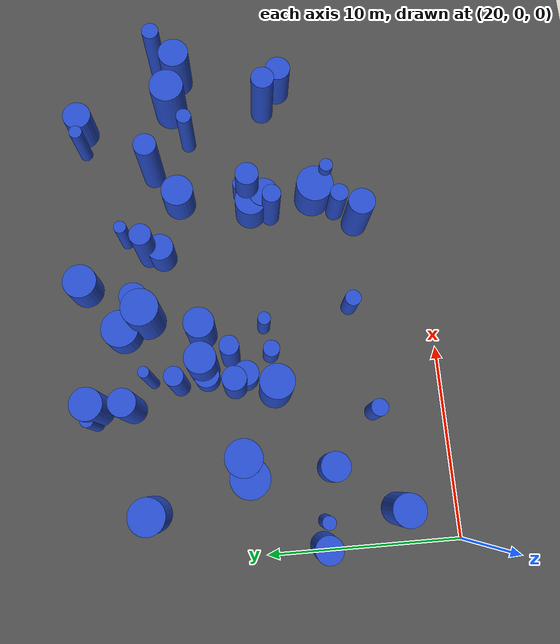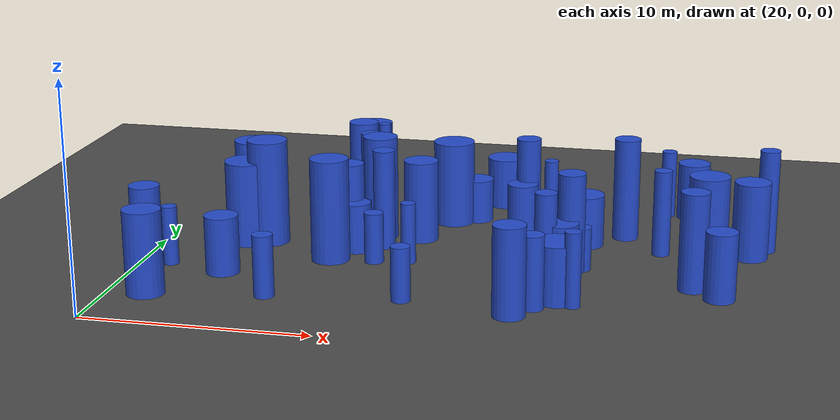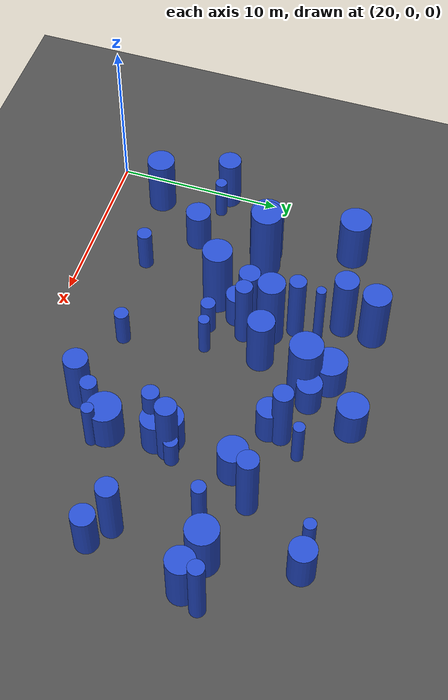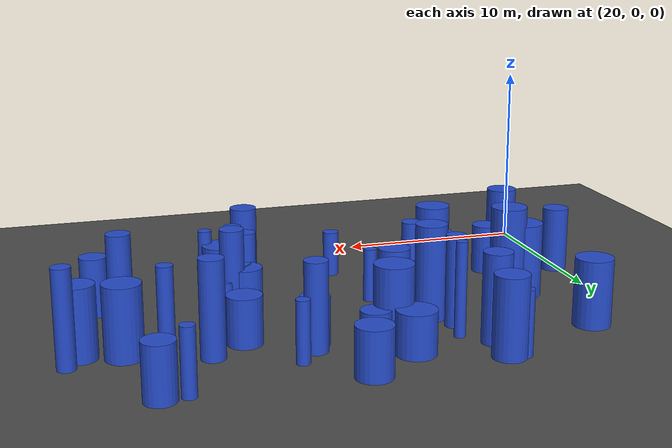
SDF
<sdf version="1.6">
 <world name="default">
  <model name="ground_plane">
   <static>1</static>
   <link name="link">
    <collision name="collision">
     <geometry><plane><normal>0 0 1</normal><size>100 100</size></plane></geometry>
     <surface><friction><ode><mu>100</mu><mu2>50</mu2></ode></friction></surface>
    </collision>
    <visual name="visual">
     <cast_shadows>0</cast_shadows>
     <geometry><plane><normal>0 0 1</normal><size>100 100</size></plane></geometry>
     <material>
      <script><uri>file://media/materials/scripts/gazebo.material</uri><name>Gazebo/Grey</name></script>
     </material>
    </visual>
   </link>
  </model>
  <model name="asphalt_plane">
   <static>1</static>
   <link name="link">
    <collision name="collision"><geometry><box><size>200 200 0.1</size></box></geometry></collision>
    <visual name="visual">
     <cast_shadows>0</cast_shadows>
     <geometry><box><size>200 200 0.1</size></box></geometry>
     <material>
      <script>
       <uri>model://asphalt_plane/materials/scripts</uri>
       <uri>model://asphalt_plane/materials/textures</uri>
       <name>vrc/asphalt</name>
      </script>
     </material>
    </visual>
   </link>
  </model>
  <model name="9">
   <static>0</static>
   <link name="link">
    <inertial>
     <mass>2</mass>
     <inertia><ixx>1.27297</ixx><ixy>0</ixy><ixz>0</ixz><iyy>1.27297</iyy><iyz>0</iyz><izz>0.516849</izz></inertia>
    </inertial>
    <collision name="collision">
     <geometry><cylinder><length>2.46725</length><radius>0.718922</radius></cylinder></geometry>
     <surface><contact><collide_without_contact>1</collide_without_contact></contact></surface>
    </collision>
    <visual name="visual">
     <geometry><cylinder><length>2.46725</length><radius>0.718922</radius></cylinder></geometry>
     <material>
      <script><uri>file://media/materials/scripts/gazebo.material</uri><name>Gazebo/Blue</name></script>
     </material>
    </visual>
    <gravity>0</gravity>
   </link>
   <pose>36.1886 14.3863 1.23362 0 -0 0</pose>
  </model>
  <model name="10">
   <static>0</static>
   <link name="link">
    <inertial>
     <mass>2</mass>
     <inertia><ixx>1.40992</ixx><ixy>0</ixy><ixz>0</ixz><iyy>1.40992</iyy><iyz>0</iyz><izz>0.197939</izz></inertia>
    </inertial>
    <collision name="collision">
     <geometry><cylinder><length>2.80459</length><radius>0.444903</radius></cylinder></geometry>
     <surface><contact><collide_without_contact>1</collide_without_contact></contact></surface>
    </collision>
    <visual name="visual">
     <geometry><cylinder><length>2.80459</length><radius>0.444903</radius></cylinder></geometry>
     <material>
      <script><uri>file://media/materials/scripts/gazebo.material</uri><name>Gazebo/Blue</name></script>
     </material>
    </visual>
    <gravity>0</gravity>
   </link>
   <pose>26.8185 3.79167 1.40229 0 -0 0</pose>
  </model>
  <model name="14">
   <static>0</static>
   <link name="link">
    <inertial>
     <mass>2</mass>
     <inertia><ixx>2.91047</ixx><ixy>0</ixy><ixz>0</ixz><iyy>2.91047</iyy><iyz>0</iyz><izz>0.499162</izz></inertia>
    </inertial>
    <collision name="collision">
     <geometry><cylinder><length>3.99567</length><radius>0.706514</radius></cylinder></geometry>
     <surface><contact><collide_without_contact>1</collide_without_contact></contact></surface>
    </collision>
    <visual name="visual">
     <geometry><cylinder><length>3.99567</length><radius>0.706514</radius></cylinder></geometry>
     <material>
      <script><uri>file://media/materials/scripts/gazebo.material</uri><name>Gazebo/Blue</name></script>
     </material>
    </visual>
    <gravity>0</gravity>
   </link>
   <pose>37.3368 3.64907 1.99783 0 -0 0</pose>
  </model>
  <model name="22">
   <static>0</static>
   <link name="link">
    <inertial>
     <mass>2</mass>
     <inertia><ixx>1.57924</ixx><ixy>0</ixy><ixz>0</ixz><iyy>1.57924</iyy><iyz>0</iyz><izz>0.59029</izz></inertia>
    </inertial>
    <collision name="collision">
     <geometry><cylinder><length>2.77571</length><radius>0.768303</radius></cylinder></geometry>
     <surface><contact><collide_without_contact>1</collide_without_contact></contact></surface>
    </collision>
    <visual name="visual">
     <geometry><cylinder><length>2.77571</length><radius>0.768303</radius></cylinder></geometry>
     <material>
      <script><uri>file://media/materials/scripts/gazebo.material</uri><name>Gazebo/Blue</name></script>
     </material>
    </visual>
    <gravity>0</gravity>
   </link>
   <pose>43.9591 18.4852 1.38785 0 -0 0</pose>
  </model>
  <model name="24">
   <static>0</static>
   <link name="link">
    <inertial>
     <mass>2</mass>
     <inertia><ixx>1.8584</ixx><ixy>0</ixy><ixz>0</ixz><iyy>1.8584</iyy><iyz>0</iyz><izz>0.121468</izz></inertia>
    </inertial>
    <collision name="collision">
     <geometry><cylinder><length>3.2842</length><radius>0.348523</radius></cylinder></geometry>
     <surface><contact><collide_without_contact>1</collide_without_contact></contact></surface>
    </collision>
    <visual name="visual">
     <geometry><cylinder><length>3.2842</length><radius>0.348523</radius></cylinder></geometry>
     <material>
      <script><uri>file://media/materials/scripts/gazebo.material</uri><name>Gazebo/Blue</name></script>
     </material>
    </visual>
    <gravity>0</gravity>
   </link>
   <pose>27.3393 18.4181 1.6421 0 -0 0</pose>
  </model>
  <model name="34">
   <static>0</static>
   <link name="link">
    <inertial>
     <mass>2</mass>
     <inertia><ixx>3.75987</ixx><ixy>0</ixy><ixz>0</ixz><iyy>3.75987</iyy><iyz>0</iyz><izz>0.248556</izz></inertia>
    </inertial>
    <collision name="collision">
     <geometry><cylinder><length>4.6705</length><radius>0.498554</radius></cylinder></geometry>
     <surface><contact><collide_without_contact>1</collide_without_contact></contact></surface>
    </collision>
    <visual name="visual">
     <geometry><cylinder><length>4.6705</length><radius>0.498554</radius></cylinder></geometry>
     <material>
      <script><uri>file://media/materials/scripts/gazebo.material</uri><name>Gazebo/Blue</name></script>
     </material>
    </visual>
    <gravity>0</gravity>
   </link>
   <pose>30.2781 11.09 2.33525 0 -0 0</pose>
  </model>
  <model name="37">
   <static>0</static>
   <link name="link">
    <inertial>
     <mass>2</mass>
     <inertia><ixx>1.40064</ixx><ixy>0</ixy><ixz>0</ixz><iyy>1.40064</iyy><iyz>0</iyz><izz>0.715011</izz></inertia>
    </inertial>
    <collision name="collision">
     <geometry><cylinder><length>2.50176</length><radius>0.845583</radius></cylinder></geometry>
     <surface><contact><collide_without_contact>1</collide_without_contact></contact></surface>
    </collision>
    <visual name="visual">
     <geometry><cylinder><length>2.50176</length><radius>0.845583</radius></cylinder></geometry>
     <material>
      <script><uri>file://media/materials/scripts/gazebo.material</uri><name>Gazebo/Blue</name></script>
     </material>
    </visual>
    <gravity>0</gravity>
   </link>
   <pose>38.4172 9.37247 1.25088 0 -0 0</pose>
  </model>
  <model name="41">
   <static>0</static>
   <link name="link">
    <inertial>
     <mass>2</mass>
     <inertia><ixx>3.05764</ixx><ixy>0</ixy><ixz>0</ixz><iyy>3.05764</iyy><iyz>0</iyz><izz>0.702112</izz></inertia>
    </inertial>
    <collision name="collision">
     <geometry><cylinder><length>4.02983</length><radius>0.837921</radius></cylinder></geometry>
     <surface><contact><collide_without_contact>1</collide_without_contact></contact></surface>
    </collision>
    <visual name="visual">
     <geometry><cylinder><length>4.02983</length><radius>0.837921</radius></cylinder></geometry>
     <material>
      <script><uri>file://media/materials/scripts/gazebo.material</uri><name>Gazebo/Blue</name></script>
     </material>
    </visual>
    <gravity>0</gravity>
   </link>
   <pose>28.0717 18.3011 2.01491 0 -0 0</pose>
  </model>
  <model name="42">
   <static>0</static>
   <link name="link">
    <inertial>
     <mass>2</mass>
     <inertia><ixx>1.13765</ixx><ixy>0</ixy><ixz>0</ixz><iyy>1.13765</iyy><iyz>0</iyz><izz>0.440877</izz></inertia>
    </inertial>
    <collision name="collision">
     <geometry><cylinder><length>2.3459</length><radius>0.663986</radius></cylinder></geometry>
     <surface><contact><collide_without_contact>1</collide_without_contact></contact></surface>
    </collision>
    <visual name="visual">
     <geometry><cylinder><length>2.3459</length><radius>0.663986</radius></cylinder></geometry>
     <material>
      <script><uri>file://media/materials/scripts/gazebo.material</uri><name>Gazebo/Blue</name></script>
     </material>
    </visual>
    <gravity>0</gravity>
   </link>
   <pose>29.1505 10.3498 1.17295 0 -0 0</pose>
  </model>
  <model name="43">
   <static>0</static>
   <link name="link">
    <inertial>
     <mass>2</mass>
     <inertia><ixx>1.8726</ixx><ixy>0</ixy><ixz>0</ixz><iyy>1.8726</iyy><iyz>0</iyz><izz>0.124585</izz></inertia>
    </inertial>
    <collision name="collision">
     <geometry><cylinder><length>3.29574</length><radius>0.352966</radius></cylinder></geometry>
     <surface><contact><collide_without_contact>1</collide_without_contact></contact></surface>
    </collision>
    <visual name="visual">
     <geometry><cylinder><length>3.29574</length><radius>0.352966</radius></cylinder></geometry>
     <material>
      <script><uri>file://media/materials/scripts/gazebo.material</uri><name>Gazebo/Blue</name></script>
     </material>
    </visual>
    <gravity>0</gravity>
   </link>
   <pose>42.7488 18.4765 1.64787 0 -0 0</pose>
  </model>
  <model name="46">
   <static>0</static>
   <link name="link">
    <inertial>
     <mass>2</mass>
     <inertia><ixx>1.39822</ixx><ixy>0</ixy><ixz>0</ixz><iyy>1.39822</iyy><iyz>0</iyz><izz>0.114651</izz></inertia>
    </inertial>
    <collision name="collision">
     <geometry><cylinder><length>2.83643</length><radius>0.338602</radius></cylinder></geometry>
     <surface><contact><collide_without_contact>1</collide_without_contact></contact></surface>
    </collision>
    <visual name="visual">
     <geometry><cylinder><length>2.83643</length><radius>0.338602</radius></cylinder></geometry>
     <material>
      <script><uri>file://media/materials/scripts/gazebo.material</uri><name>Gazebo/Blue</name></script>
     </material>
    </visual>
    <gravity>0</gravity>
   </link>
   <pose>31.8364 9.20339 1.41822 0 -0 0</pose>
  </model>
  <model name="56">
   <static>0</static>
   <link name="link">
    <inertial>
     <mass>2</mass>
     <inertia><ixx>2.77614</ixx><ixy>0</ixy><ixz>0</ixz><iyy>2.77614</iyy><iyz>0</iyz><izz>0.245795</izz></inertia>
    </inertial>
    <collision name="collision">
     <geometry><cylinder><length>3.98992</length><radius>0.495777</radius></cylinder></geometry>
     <surface><contact><collide_without_contact>1</collide_without_contact></contact></surface>
    </collision>
    <visual name="visual">
     <geometry><cylinder><length>3.98992</length><radius>0.495777</radius></cylinder></geometry>
     <material>
      <script><uri>file://media/materials/scripts/gazebo.material</uri><name>Gazebo/Blue</name></script>
     </material>
    </visual>
    <gravity>0</gravity>
   </link>
   <pose>38.1551 8.28818 1.99496 0 -0 0</pose>
  </model>
  <model name="57">
   <static>0</static>
   <link name="link">
    <inertial>
     <mass>2</mass>
     <inertia><ixx>2.7647</ixx><ixy>0</ixy><ixz>0</ixz><iyy>2.7647</iyy><iyz>0</iyz><izz>0.695099</izz></inertia>
    </inertial>
    <collision name="collision">
     <geometry><cylinder><length>3.80827</length><radius>0.833726</radius></cylinder></geometry>
     <surface><contact><collide_without_contact>1</collide_without_contact></contact></surface>
    </collision>
    <visual name="visual">
     <geometry><cylinder><length>3.80827</length><radius>0.833726</radius></cylinder></geometry>
     <material>
      <script><uri>file://media/materials/scripts/gazebo.material</uri><name>Gazebo/Blue</name></script>
     </material>
    </visual>
    <gravity>0</gravity>
   </link>
   <pose>21.7704 3.10199 1.90413 0 -0 0</pose>
  </model>
  <model name="60">
   <static>0</static>
   <link name="link">
    <inertial>
     <mass>2</mass>
     <inertia><ixx>2.52957</ixx><ixy>0</ixy><ixz>0</ixz><iyy>2.52957</iyy><iyz>0</iyz><izz>0.676676</izz></inertia>
    </inertial>
    <collision name="collision">
     <geometry><cylinder><length>3.62593</length><radius>0.822603</radius></cylinder></geometry>
     <surface><contact><collide_without_contact>1</collide_without_contact></contact></surface>
    </collision>
    <visual name="visual">
     <geometry><cylinder><length>3.62593</length><radius>0.822603</radius></cylinder></geometry>
     <material>
      <script><uri>file://media/materials/scripts/gazebo.material</uri><name>Gazebo/Blue</name></script>
     </material>
    </visual>
    <gravity>0</gravity>
   </link>
   <pose>46.8205 12.9395 1.81297 0 -0 0</pose>
  </model>
  <model name="62">
   <static>0</static>
   <link name="link">
    <inertial>
     <mass>2</mass>
     <inertia><ixx>3.86289</ixx><ixy>0</ixy><ixz>0</ixz><iyy>3.86289</iyy><iyz>0</iyz><izz>0.080667</izz></inertia>
    </inertial>
    <collision name="collision">
     <geometry><cylinder><length>4.78908</length><radius>0.284019</radius></cylinder></geometry>
     <surface><contact><collide_without_contact>1</collide_without_contact></contact></surface>
    </collision>
    <visual name="visual">
     <geometry><cylinder><length>4.78908</length><radius>0.284019</radius></cylinder></geometry>
     <material>
      <script><uri>file://media/materials/scripts/gazebo.material</uri><name>Gazebo/Blue</name></script>
     </material>
    </visual>
    <gravity>0</gravity>
   </link>
   <pose>29.2941 15.3061 2.39454 0 -0 0</pose>
  </model>
  <model name="71">
   <static>0</static>
   <link name="link">
    <inertial>
     <mass>2</mass>
     <inertia><ixx>2.80373</ixx><ixy>0</ixy><ixz>0</ixz><iyy>2.80373</iyy><iyz>0</iyz><izz>0.629376</izz></inertia>
    </inertial>
    <collision name="collision">
     <geometry><cylinder><length>3.86449</length><radius>0.793332</radius></cylinder></geometry>
     <surface><contact><collide_without_contact>1</collide_without_contact></contact></surface>
    </collision>
    <visual name="visual">
     <geometry><cylinder><length>3.86449</length><radius>0.793332</radius></cylinder></geometry>
     <material>
      <script><uri>file://media/materials/scripts/gazebo.material</uri><name>Gazebo/Blue</name></script>
     </material>
    </visual>
    <gravity>0</gravity>
   </link>
   <pose>31.6922 12.5394 1.93224 0 -0 0</pose>
  </model>
  <model name="73">
   <static>0</static>
   <link name="link">
    <inertial>
     <mass>2</mass>
     <inertia><ixx>3.76472</ixx><ixy>0</ixy><ixz>0</ixz><iyy>3.76472</iyy><iyz>0</iyz><izz>0.246582</izz></inertia>
    </inertial>
    <collision name="collision">
     <geometry><cylinder><length>4.67425</length><radius>0.49657</radius></cylinder></geometry>
     <surface><contact><collide_without_contact>1</collide_without_contact></contact></surface>
    </collision>
    <visual name="visual">
     <geometry><cylinder><length>4.67425</length><radius>0.49657</radius></cylinder></geometry>
     <material>
      <script><uri>file://media/materials/scripts/gazebo.material</uri><name>Gazebo/Blue</name></script>
     </material>
    </visual>
    <gravity>0</gravity>
   </link>
   <pose>28.9884 13.8789 2.33712 0 -0 0</pose>
  </model>
  <model name="74">
   <static>0</static>
   <link name="link">
    <inertial>
     <mass>2</mass>
     <inertia><ixx>1.31675</ixx><ixy>0</ixy><ixz>0</ixz><iyy>1.31675</iyy><iyz>0</iyz><izz>0.987604</izz></inertia>
    </inertial>
    <collision name="collision">
     <geometry><cylinder><length>2.22209</length><radius>0.993783</radius></cylinder></geometry>
     <surface><contact><collide_without_contact>1</collide_without_contact></contact></surface>
    </collision>
    <visual name="visual">
     <geometry><cylinder><length>2.22209</length><radius>0.993783</radius></cylinder></geometry>
     <material>
      <script><uri>file://media/materials/scripts/gazebo.material</uri><name>Gazebo/Blue</name></script>
     </material>
    </visual>
    <gravity>0</gravity>
   </link>
   <pose>32.0302 16.745 1.11105 0 -0 0</pose>
  </model>
  <model name="76">
   <static>0</static>
   <link name="link">
    <inertial>
     <mass>2</mass>
     <inertia><ixx>1.44182</ixx><ixy>0</ixy><ixz>0</ixz><iyy>1.44182</iyy><iyz>0</iyz><izz>0.812802</izz></inertia>
    </inertial>
    <collision name="collision">
     <geometry><cylinder><length>2.49249</length><radius>0.901556</radius></cylinder></geometry>
     <surface><contact><collide_without_contact>1</collide_without_contact></contact></surface>
    </collision>
    <visual name="visual">
     <geometry><cylinder><length>2.49249</length><radius>0.901556</radius></cylinder></geometry>
     <material>
      <script><uri>file://media/materials/scripts/gazebo.material</uri><name>Gazebo/Blue</name></script>
     </material>
    </visual>
    <gravity>0</gravity>
   </link>
   <pose>34.6756 18.6978 1.24624 0 -0 0</pose>
  </model>
  <model name="77">
   <static>0</static>
   <link name="link">
    <inertial>
     <mass>2</mass>
     <inertia><ixx>3.09735</ixx><ixy>0</ixy><ixz>0</ixz><iyy>3.09735</iyy><iyz>0</iyz><izz>0.998419</izz></inertia>
    </inertial>
    <collision name="collision">
     <geometry><cylinder><length>3.94827</length><radius>0.999209</radius></cylinder></geometry>
     <surface><contact><collide_without_contact>1</collide_without_contact></contact></surface>
    </collision>
    <visual name="visual">
     <geometry><cylinder><length>3.94827</length><radius>0.999209</radius></cylinder></geometry>
     <material>
      <script><uri>file://media/materials/scripts/gazebo.material</uri><name>Gazebo/Blue</name></script>
     </material>
    </visual>
    <gravity>0</gravity>
   </link>
   <pose>23.8715 10.5656 1.97414 0 -0 0</pose>
  </model>
  <model name="79">
   <static>0</static>
   <link name="link">
    <inertial>
     <mass>2</mass>
     <inertia><ixx>4.49479</ixx><ixy>0</ixy><ixz>0</ixz><iyy>4.49479</iyy><iyz>0</iyz><izz>0.856333</izz></inertia>
    </inertial>
    <collision name="collision">
     <geometry><cylinder><length>4.93961</length><radius>0.925383</radius></cylinder></geometry>
     <surface><contact><collide_without_contact>1</collide_without_contact></contact></surface>
    </collision>
    <visual name="visual">
     <geometry><cylinder><length>4.93961</length><radius>0.925383</radius></cylinder></geometry>
     <material>
      <script><uri>file://media/materials/scripts/gazebo.material</uri><name>Gazebo/Blue</name></script>
     </material>
    </visual>
    <gravity>0</gravity>
   </link>
   <pose>24.8269 10.7923 2.46981 0 -0 0</pose>
  </model>
  <model name="84">
   <static>0</static>
   <link name="link">
    <inertial>
     <mass>2</mass>
     <inertia><ixx>1.40467</ixx><ixy>0</ixy><ixz>0</ixz><iyy>1.40467</iyy><iyz>0</iyz><izz>0.752602</izz></inertia>
    </inertial>
    <collision name="collision">
     <geometry><cylinder><length>2.484</length><radius>0.867526</radius></cylinder></geometry>
     <surface><contact><collide_without_contact>1</collide_without_contact></contact></surface>
    </collision>
    <visual name="visual">
     <geometry><cylinder><length>2.484</length><radius>0.867526</radius></cylinder></geometry>
     <material>
      <script><uri>file://media/materials/scripts/gazebo.material</uri><name>Gazebo/Blue</name></script>
     </material>
    </visual>
    <gravity>0</gravity>
   </link>
   <pose>39.2948 13.2887 1.242 0 -0 0</pose>
  </model>
  <model name="85">
   <static>0</static>
   <link name="link">
    <inertial>
     <mass>2</mass>
     <inertia><ixx>3.49017</ixx><ixy>0</ixy><ixz>0</ixz><iyy>3.49017</iyy><iyz>0</iyz><izz>0.329145</izz></inertia>
    </inertial>
    <collision name="collision">
     <geometry><cylinder><length>4.46694</length><radius>0.573711</radius></cylinder></geometry>
     <surface><contact><collide_without_contact>1</collide_without_contact></contact></surface>
    </collision>
    <visual name="visual">
     <geometry><cylinder><length>4.46694</length><radius>0.573711</radius></cylinder></geometry>
     <material>
      <script><uri>file://media/materials/scripts/gazebo.material</uri><name>Gazebo/Blue</name></script>
     </material>
    </visual>
    <gravity>0</gravity>
   </link>
   <pose>36.3377 15.1662 2.23347 0 -0 0</pose>
  </model>
  <model name="86">
   <static>0</static>
   <link name="link">
    <inertial>
     <mass>2</mass>
     <inertia><ixx>3.21751</ixx><ixy>0</ixy><ixz>0</ixz><iyy>3.21751</iyy><iyz>0</iyz><izz>0.937434</izz></inertia>
    </inertial>
    <collision name="collision">
     <geometry><cylinder><length>4.06113</length><radius>0.968212</radius></cylinder></geometry>
     <surface><contact><collide_without_contact>1</collide_without_contact></contact></surface>
    </collision>
    <visual name="visual">
     <geometry><cylinder><length>4.06113</length><radius>0.968212</radius></cylinder></geometry>
     <material>
      <script><uri>file://media/materials/scripts/gazebo.material</uri><name>Gazebo/Blue</name></script>
     </material>
    </visual>
    <gravity>0</gravity>
   </link>
   <pose>32.678 15.4378 2.03056 0 -0 0</pose>
  </model>
  <model name="87">
   <static>0</static>
   <link name="link">
    <inertial>
     <mass>2</mass>
     <inertia><ixx>3.67503</ixx><ixy>0</ixy><ixz>0</ixz><iyy>3.67503</iyy><iyz>0</iyz><izz>0.375093</izz></inertia>
    </inertial>
    <collision name="collision">
     <geometry><cylinder><length>4.57438</length><radius>0.612449</radius></cylinder></geometry>
     <surface><contact><collide_without_contact>1</collide_without_contact></contact></surface>
    </collision>
    <visual name="visual">
     <geometry><cylinder><length>4.57438</length><radius>0.612449</radius></cylinder></geometry>
     <material>
      <script><uri>file://media/materials/scripts/gazebo.material</uri><name>Gazebo/Blue</name></script>
     </material>
    </visual>
    <gravity>0</gravity>
   </link>
   <pose>39.1185 9.50493 2.28719 0 -0 0</pose>
  </model>
  <model name="95">
   <static>0</static>
   <link name="link">
    <inertial>
     <mass>2</mass>
     <inertia><ixx>2.48153</ixx><ixy>0</ixy><ixz>0</ixz><iyy>2.48153</iyy><iyz>0</iyz><izz>0.885892</izz></inertia>
    </inertial>
    <collision name="collision">
     <geometry><cylinder><length>3.49736</length><radius>0.941218</radius></cylinder></geometry>
     <surface><contact><collide_without_contact>1</collide_without_contact></contact></surface>
    </collision>
    <visual name="visual">
     <geometry><cylinder><length>3.49736</length><radius>0.941218</radius></cylinder></geometry>
     <material>
      <script><uri>file://media/materials/scripts/gazebo.material</uri><name>Gazebo/Blue</name></script>
     </material>
    </visual>
    <gravity>0</gravity>
   </link>
   <pose>22.5044 15.6831 1.74868 0 -0 0</pose>
  </model>
  <model name="101">
   <static>0</static>
   <link name="link">
    <inertial>
     <mass>2</mass>
     <inertia><ixx>4.34261</ixx><ixy>0</ixy><ixz>0</ixz><iyy>4.34261</iyy><iyz>0</iyz><izz>0.639798</izz></inertia>
    </inertial>
    <collision name="collision">
     <geometry><cylinder><length>4.91287</length><radius>0.799873</radius></cylinder></geometry>
     <surface><contact><collide_without_contact>1</collide_without_contact></contact></surface>
    </collision>
    <visual name="visual">
     <geometry><cylinder><length>4.91287</length><radius>0.799873</radius></cylinder></geometry>
     <material>
      <script><uri>file://media/materials/scripts/gazebo.material</uri><name>Gazebo/Blue</name></script>
     </material>
    </visual>
    <gravity>0</gravity>
   </link>
   <pose>29.7547 12.5373 2.45643 0 -0 0</pose>
  </model>
  <model name="105">
   <static>0</static>
   <link name="link">
    <inertial>
     <mass>2</mass>
     <inertia><ixx>2.86926</ixx><ixy>0</ixy><ixz>0</ixz><iyy>2.86926</iyy><iyz>0</iyz><izz>0.396155</izz></inertia>
    </inertial>
    <collision name="collision">
     <geometry><cylinder><length>4.00339</length><radius>0.629409</radius></cylinder></geometry>
     <surface><contact><collide_without_contact>1</collide_without_contact></contact></surface>
    </collision>
    <visual name="visual">
     <geometry><cylinder><length>4.00339</length><radius>0.629409</radius></cylinder></geometry>
     <material>
      <script><uri>file://media/materials/scripts/gazebo.material</uri><name>Gazebo/Blue</name></script>
     </material>
    </visual>
    <gravity>0</gravity>
   </link>
   <pose>28.7302 10.9599 2.00169 0 -0 0</pose>
  </model>
  <model name="120">
   <static>0</static>
   <link name="link">
    <inertial>
     <mass>2</mass>
     <inertia><ixx>4.10675</ixx><ixy>0</ixy><ixz>0</ixz><iyy>4.10675</iyy><iyz>0</iyz><izz>0.365101</izz></inertia>
    </inertial>
    <collision name="collision">
     <geometry><cylinder><length>4.85234</length><radius>0.604236</radius></cylinder></geometry>
     <surface><contact><collide_without_contact>1</collide_without_contact></contact></surface>
    </collision>
    <visual name="visual">
     <geometry><cylinder><length>4.85234</length><radius>0.604236</radius></cylinder></geometry>
     <material>
      <script><uri>file://media/materials/scripts/gazebo.material</uri><name>Gazebo/Blue</name></script>
     </material>
    </visual>
    <gravity>0</gravity>
   </link>
   <pose>41.0366 14.6393 2.42617 0 -0 0</pose>
  </model>
  <model name="122">
   <static>0</static>
   <link name="link">
    <inertial>
     <mass>2</mass>
     <inertia><ixx>1.49105</ixx><ixy>0</ixy><ixz>0</ixz><iyy>1.49105</iyy><iyz>0</iyz><izz>0.573233</izz></inertia>
    </inertial>
    <collision name="collision">
     <geometry><cylinder><length>2.68823</length><radius>0.757122</radius></cylinder></geometry>
     <surface><contact><collide_without_contact>1</collide_without_contact></contact></surface>
    </collision>
    <visual name="visual">
     <geometry><cylinder><length>2.68823</length><radius>0.757122</radius></cylinder></geometry>
     <material>
      <script><uri>file://media/materials/scripts/gazebo.material</uri><name>Gazebo/Blue</name></script>
     </material>
    </visual>
    <gravity>0</gravity>
   </link>
   <pose>24.1089 6.2856 1.34411 0 -0 0</pose>
  </model>
  <model name="137">
   <static>0</static>
   <link name="link">
    <inertial>
     <mass>2</mass>
     <inertia><ixx>3.64908</ixx><ixy>0</ixy><ixz>0</ixz><iyy>3.64908</iyy><iyz>0</iyz><izz>0.505273</izz></inertia>
    </inertial>
    <collision name="collision">
     <geometry><cylinder><length>4.51428</length><radius>0.710826</radius></cylinder></geometry>
     <surface><contact><collide_without_contact>1</collide_without_contact></contact></surface>
    </collision>
    <visual name="visual">
     <geometry><cylinder><length>4.51428</length><radius>0.710826</radius></cylinder></geometry>
     <material>
      <script><uri>file://media/materials/scripts/gazebo.material</uri><name>Gazebo/Blue</name></script>
     </material>
    </visual>
    <gravity>0</gravity>
   </link>
   <pose>27.9451 16.4643 2.25714 0 -0 0</pose>
  </model>
  <model name="147">
   <static>0</static>
   <link name="link">
    <inertial>
     <mass>2</mass>
     <inertia>
      <ixx>0.898781</ixx>
      <ixy>0</ixy>
      <ixz>0</ixz>
      <iyy>0.898781</iyy>
      <iyz>0</iyz>
      <izz>0.140183</izz>
     </inertia>
    </inertial>
    <collision name="collision">
     <geometry><cylinder><length>2.22983</length><radius>0.37441</radius></cylinder></geometry>
     <surface><contact><collide_without_contact>1</collide_without_contact></contact></surface>
    </collision>
    <visual name="visual">
     <geometry><cylinder><length>2.22983</length><radius>0.37441</radius></cylinder></geometry>
     <material>
      <script><uri>file://media/materials/scripts/gazebo.material</uri><name>Gazebo/Blue</name></script>
     </material>
    </visual>
    <gravity>0</gravity>
   </link>
   <pose>41.1789 14.6443 1.11491 0 -0 0</pose>
  </model>
  <model name="149">
   <static>0</static>
   <link name="link">
    <inertial>
     <mass>2</mass>
     <inertia><ixx>3.46945</ixx><ixy>0</ixy><ixz>0</ixz><iyy>3.46945</iyy><iyz>0</iyz><izz>0.384951</izz></inertia>
    </inertial>
    <collision name="collision">
     <geometry><cylinder><length>4.43417</length><radius>0.620444</radius></cylinder></geometry>
     <surface><contact><collide_without_contact>1</collide_without_contact></contact></surface>
    </collision>
    <visual name="visual">
     <geometry><cylinder><length>4.43417</length><radius>0.620444</radius></cylinder></geometry>
     <material>
      <script><uri>file://media/materials/scripts/gazebo.material</uri><name>Gazebo/Blue</name></script>
     </material>
    </visual>
    <gravity>0</gravity>
   </link>
   <pose>44.509 8.23323 2.21708 0 -0 0</pose>
  </model>
  <model name="156">
   <static>0</static>
   <link name="link">
    <inertial>
     <mass>2</mass>
     <inertia><ixx>0.7634</ixx><ixy>0</ixy><ixz>0</ixz><iyy>0.7634</iyy><iyz>0</iyz><izz>0.172524</izz></inertia>
    </inertial>
    <collision name="collision">
     <geometry><cylinder><length>2.01565</length><radius>0.41536</radius></cylinder></geometry>
     <surface><contact><collide_without_contact>1</collide_without_contact></contact></surface>
    </collision>
    <visual name="visual">
     <geometry><cylinder><length>2.01565</length><radius>0.41536</radius></cylinder></geometry>
     <material>
      <script><uri>file://media/materials/scripts/gazebo.material</uri><name>Gazebo/Blue</name></script>
     </material>
    </visual>
    <gravity>0</gravity>
   </link>
   <pose>39.5638 9.85322 1.00782 0 -0 0</pose>
  </model>
  <model name="159">
   <static>0</static>
   <link name="link">
    <inertial>
     <mass>2</mass>
     <inertia><ixx>4.20125</ixx><ixy>0</ixy><ixz>0</ixz><iyy>4.20125</iyy><iyz>0</iyz><izz>0.767186</izz></inertia>
    </inertial>
    <collision name="collision">
     <geometry><cylinder><length>4.78601</length><radius>0.875891</radius></cylinder></geometry>
     <surface><contact><collide_without_contact>1</collide_without_contact></contact></surface>
    </collision>
    <visual name="visual">
     <geometry><cylinder><length>4.78601</length><radius>0.875891</radius></cylinder></geometry>
     <material>
      <script><uri>file://media/materials/scripts/gazebo.material</uri><name>Gazebo/Blue</name></script>
     </material>
    </visual>
    <gravity>0</gravity>
   </link>
   <pose>28.3136 8.87989 2.39301 0 -0 0</pose>
  </model>
  <model name="165">
   <static>0</static>
   <link name="link">
    <inertial>
     <mass>2</mass>
     <inertia><ixx>1.39954</ixx><ixy>0</ixy><ixz>0</ixz><iyy>1.39954</iyy><iyz>0</iyz><izz>0.624955</izz></inertia>
    </inertial>
    <collision name="collision">
     <geometry><cylinder><length>2.55389</length><radius>0.790541</radius></cylinder></geometry>
     <surface><contact><collide_without_contact>1</collide_without_contact></contact></surface>
    </collision>
    <visual name="visual">
     <geometry><cylinder><length>2.55389</length><radius>0.790541</radius></cylinder></geometry>
     <material>
      <script><uri>file://media/materials/scripts/gazebo.material</uri><name>Gazebo/Blue</name></script>
     </material>
    </visual>
    <gravity>0</gravity>
   </link>
   <pose>38.7771 8.64627 1.27694 0 -0 0</pose>
  </model>
  <model name="167">
   <static>0</static>
   <link name="link">
    <inertial>
     <mass>2</mass>
     <inertia><ixx>1.80978</ixx><ixy>0</ixy><ixz>0</ixz><iyy>1.80978</iyy><iyz>0</iyz><izz>0.471564</izz></inertia>
    </inertial>
    <collision name="collision">
     <geometry><cylinder><length>3.07311</length><radius>0.686705</radius></cylinder></geometry>
     <surface><contact><collide_without_contact>1</collide_without_contact></contact></surface>
    </collision>
    <visual name="visual">
     <geometry><cylinder><length>3.07311</length><radius>0.686705</radius></cylinder></geometry>
     <material>
      <script><uri>file://media/materials/scripts/gazebo.material</uri><name>Gazebo/Blue</name></script>
     </material>
    </visual>
    <gravity>0</gravity>
   </link>
   <pose>45.7058 7.27517 1.53655 0 -0 0</pose>
  </model>
  <model name="171">
   <static>0</static>
   <link name="link">
    <inertial>
     <mass>2</mass>
     <inertia><ixx>1.92743</ixx><ixy>0</ixy><ixz>0</ixz><iyy>1.92743</iyy><iyz>0</iyz><izz>0.23324</izz></inertia>
    </inertial>
    <collision name="collision">
     <geometry><cylinder><length>3.29618</length><radius>0.48295</radius></cylinder></geometry>
     <surface><contact><collide_without_contact>1</collide_without_contact></contact></surface>
    </collision>
    <visual name="visual">
     <geometry><cylinder><length>3.29618</length><radius>0.48295</radius></cylinder></geometry>
     <material>
      <script><uri>file://media/materials/scripts/gazebo.material</uri><name>Gazebo/Blue</name></script>
     </material>
    </visual>
    <gravity>0</gravity>
   </link>
   <pose>38.1547 4.66756 1.64809 0 -0 0</pose>
  </model>
  <model name="184">
   <static>0</static>
   <link name="link">
    <inertial>
     <mass>2</mass>
     <inertia>
      <ixx>0.910136</ixx>
      <ixy>0</ixy>
      <ixz>0</ixz>
      <iyy>0.910136</iyy>
      <iyz>0</iyz>
      <izz>0.443864</izz>
     </inertia>
    </inertial>
    <collision name="collision">
     <geometry><cylinder><length>2.03205</length><radius>0.666231</radius></cylinder></geometry>
     <surface><contact><collide_without_contact>1</collide_without_contact></contact></surface>
    </collision>
    <visual name="visual">
     <geometry><cylinder><length>2.03205</length><radius>0.666231</radius></cylinder></geometry>
     <material>
      <script><uri>file://media/materials/scripts/gazebo.material</uri><name>Gazebo/Blue</name></script>
     </material>
    </visual>
    <gravity>0</gravity>
   </link>
   <pose>29.2743 12.4064 1.01602 0 -0 0</pose>
  </model>
  <model name="199">
   <static>0</static>
   <link name="link">
    <inertial>
     <mass>2</mass>
     <inertia><ixx>1.03314</ixx><ixy>0</ixy><ixz>0</ixz><iyy>1.03314</iyy><iyz>0</iyz><izz>0.190372</izz></inertia>
    </inertial>
    <collision name="collision">
     <geometry><cylinder><length>2.37228</length><radius>0.436316</radius></cylinder></geometry>
     <surface><contact><collide_without_contact>1</collide_without_contact></contact></surface>
    </collision>
    <visual name="visual">
     <geometry><cylinder><length>2.37228</length><radius>0.436316</radius></cylinder></geometry>
     <material>
      <script><uri>file://media/materials/scripts/gazebo.material</uri><name>Gazebo/Blue</name></script>
     </material>
    </visual>
    <gravity>0</gravity>
   </link>
   <pose>30.3164 8.9481 1.18614 0 -0 0</pose>
  </model>
  <model name="202">
   <static>0</static>
   <link name="link">
    <inertial>
     <mass>2</mass>
     <inertia><ixx>2.78119</ixx><ixy>0</ixy><ixz>0</ixz><iyy>2.78119</iyy><iyz>0</iyz><izz>0.165507</izz></inertia>
    </inertial>
    <collision name="collision">
     <geometry><cylinder><length>4.02376</length><radius>0.406826</radius></cylinder></geometry>
     <surface><contact><collide_without_contact>1</collide_without_contact></contact></surface>
    </collision>
    <visual name="visual">
     <geometry><cylinder><length>4.02376</length><radius>0.406826</radius></cylinder></geometry>
     <material>
      <script><uri>file://media/materials/scripts/gazebo.material</uri><name>Gazebo/Blue</name></script>
     </material>
    </visual>
    <gravity>0</gravity>
   </link>
   <pose>42.8502 12.5808 2.01188 0 -0 0</pose>
  </model>
  <model name="207">
   <static>0</static>
   <link name="link">
    <inertial>
     <mass>2</mass>
     <inertia><ixx>1.66216</ixx><ixy>0</ixy><ixz>0</ixz><iyy>1.66216</iyy><iyz>0</iyz><izz>0.113029</izz></inertia>
    </inertial>
    <collision name="collision">
     <geometry><cylinder><length>3.10385</length><radius>0.336198</radius></cylinder></geometry>
     <surface><contact><collide_without_contact>1</collide_without_contact></contact></surface>
    </collision>
    <visual name="visual">
     <geometry><cylinder><length>3.10385</length><radius>0.336198</radius></cylinder></geometry>
     <material>
      <script><uri>file://media/materials/scripts/gazebo.material</uri><name>Gazebo/Blue</name></script>
     </material>
    </visual>
    <gravity>0</gravity>
   </link>
   <pose>37.2672 16.3573 1.55193 0 -0 0</pose>
  </model>
  <model name="220">
   <static>0</static>
   <link name="link">
    <inertial>
     <mass>2</mass>
     <inertia><ixx>3.99113</ixx><ixy>0</ixy><ixz>0</ixz><iyy>3.99113</iyy><iyz>0</iyz><izz>0.208699</izz></inertia>
    </inertial>
    <collision name="collision">
     <geometry><cylinder><length>4.82915</length><radius>0.456835</radius></cylinder></geometry>
     <surface><contact><collide_without_contact>1</collide_without_contact></contact></surface>
    </collision>
    <visual name="visual">
     <geometry><cylinder><length>4.82915</length><radius>0.456835</radius></cylinder></geometry>
     <material>
      <script><uri>file://media/materials/scripts/gazebo.material</uri><name>Gazebo/Blue</name></script>
     </material>
    </visual>
    <gravity>0</gravity>
   </link>
   <pose>47.5131 14.0166 2.41458 0 -0 0</pose>
  </model>
  <model name="228">
   <static>0</static>
   <link name="link">
    <inertial>
     <mass>2</mass>
     <inertia><ixx>2.36943</ixx><ixy>0</ixy><ixz>0</ixz><iyy>2.36943</iyy><iyz>0</iyz><izz>0.485258</izz></inertia>
    </inertial>
    <collision name="collision">
     <geometry><cylinder><length>3.57222</length><radius>0.696605</radius></cylinder></geometry>
     <surface><contact><collide_without_contact>1</collide_without_contact></contact></surface>
    </collision>
    <visual name="visual">
     <geometry><cylinder><length>3.57222</length><radius>0.696605</radius></cylinder></geometry>
     <material>
      <script><uri>file://media/materials/scripts/gazebo.material</uri><name>Gazebo/Blue</name></script>
     </material>
    </visual>
    <gravity>0</gravity>
   </link>
   <pose>20.259 7.07931 1.78611 0 -0 0</pose>
  </model>
  <model name="234">
   <static>0</static>
   <link name="link">
    <inertial>
     <mass>2</mass>
     <inertia><ixx>1.30881</ixx><ixy>0</ixy><ixz>0</ixz><iyy>1.30881</iyy><iyz>0</iyz><izz>0.123424</izz></inertia>
    </inertial>
    <collision name="collision">
     <geometry><cylinder><length>2.73543</length><radius>0.351317</radius></cylinder></geometry>
     <surface><contact><collide_without_contact>1</collide_without_contact></contact></surface>
    </collision>
    <visual name="visual">
     <geometry><cylinder><length>2.73543</length><radius>0.351317</radius></cylinder></geometry>
     <material>
      <script><uri>file://media/materials/scripts/gazebo.material</uri><name>Gazebo/Blue</name></script>
     </material>
    </visual>
    <gravity>0</gravity>
   </link>
   <pose>21.4625 6.90268 1.36771 0 -0 0</pose>
  </model>
  <model name="236">
   <static>0</static>
   <link name="link">
    <inertial>
     <mass>2</mass>
     <inertia><ixx>1.0157</ixx><ixy>0</ixy><ixz>0</ixz><iyy>1.0157</iyy><iyz>0</iyz><izz>0.548919</izz></inertia>
    </inertial>
    <collision name="collision">
     <geometry><cylinder><length>2.10889</length><radius>0.740891</radius></cylinder></geometry>
     <surface><contact><collide_without_contact>1</collide_without_contact></contact></surface>
    </collision>
    <visual name="visual">
     <geometry><cylinder><length>2.10889</length><radius>0.740891</radius></cylinder></geometry>
     <material>
      <script><uri>file://media/materials/scripts/gazebo.material</uri><name>Gazebo/Blue</name></script>
     </material>
    </visual>
    <gravity>0</gravity>
   </link>
   <pose>33.7389 16.0021 1.05444 0 -0 0</pose>
  </model>
  <model name="240">
   <static>0</static>
   <link name="link">
    <inertial>
     <mass>2</mass>
     <inertia><ixx>1.10607</ixx><ixy>0</ixy><ixz>0</ixz><iyy>1.10607</iyy><iyz>0</iyz><izz>0.179504</izz></inertia>
    </inertial>
    <collision name="collision">
     <geometry><cylinder><length>2.46939</length><radius>0.423679</radius></cylinder></geometry>
     <surface><contact><collide_without_contact>1</collide_without_contact></contact></surface>
    </collision>
    <visual name="visual">
     <geometry><cylinder><length>2.46939</length><radius>0.423679</radius></cylinder></geometry>
     <material>
      <script><uri>file://media/materials/scripts/gazebo.material</uri><name>Gazebo/Blue</name></script>
     </material>
    </visual>
    <gravity>0</gravity>
   </link>
   <pose>32.6033 4.4601 1.23469 0 -0 0</pose>
  </model>
  <model name="242">
   <static>0</static>
   <link name="link">
    <inertial>
     <mass>2</mass>
     <inertia><ixx>2.64765</ixx><ixy>0</ixy><ixz>0</ixz><iyy>2.64765</iyy><iyz>0</iyz><izz>0.859905</izz></inertia>
    </inertial>
    <collision name="collision">
     <geometry><cylinder><length>3.64776</length><radius>0.927311</radius></cylinder></geometry>
     <surface><contact><collide_without_contact>1</collide_without_contact></contact></surface>
    </collision>
    <visual name="visual">
     <geometry><cylinder><length>3.64776</length><radius>0.927311</radius></cylinder></geometry>
     <material>
      <script><uri>file://media/materials/scripts/gazebo.material</uri><name>Gazebo/Blue</name></script>
     </material>
    </visual>
    <gravity>0</gravity>
   </link>
   <pose>44.9013 13.4332 1.82388 0 -0 0</pose>
  </model>
  <model name="244">
   <static>0</static>
   <link name="link">
    <inertial>
     <mass>2</mass>
     <inertia><ixx>1.92516</ixx><ixy>0</ixy><ixz>0</ixz><iyy>1.92516</iyy><iyz>0</iyz><izz>0.128426</izz></inertia>
    </inertial>
    <collision name="collision">
     <geometry><cylinder><length>3.34151</length><radius>0.358366</radius></cylinder></geometry>
     <surface><contact><collide_without_contact>1</collide_without_contact></contact></surface>
    </collision>
    <visual name="visual">
     <geometry><cylinder><length>3.34151</length><radius>0.358366</radius></cylinder></geometry>
     <material>
      <script><uri>file://media/materials/scripts/gazebo.material</uri><name>Gazebo/Blue</name></script>
     </material>
    </visual>
    <gravity>0</gravity>
   </link>
   <pose>39.7357 5.22816 1.67076 0 -0 0</pose>
  </model>
  <model name="248">
   <static>0</static>
   <link name="link">
    <inertial>
     <mass>2</mass>
     <inertia><ixx>1.68618</ixx><ixy>0</ixy><ixz>0</ixz><iyy>1.68618</iyy><iyz>0</iyz><izz>0.992082</izz></inertia>
    </inertial>
    <collision name="collision">
     <geometry><cylinder><length>2.67223</length><radius>0.996033</radius></cylinder></geometry>
     <surface><contact><collide_without_contact>1</collide_without_contact></contact></surface>
    </collision>
    <visual name="visual">
     <geometry><cylinder><length>2.67223</length><radius>0.996033</radius></cylinder></geometry>
     <material>
      <script><uri>file://media/materials/scripts/gazebo.material</uri><name>Gazebo/Blue</name></script>
     </material>
    </visual>
    <gravity>0</gravity>
   </link>
   <pose>39.0018 5.84855 1.33612 0 -0 0</pose>
  </model>
 </world>
</sdf>
